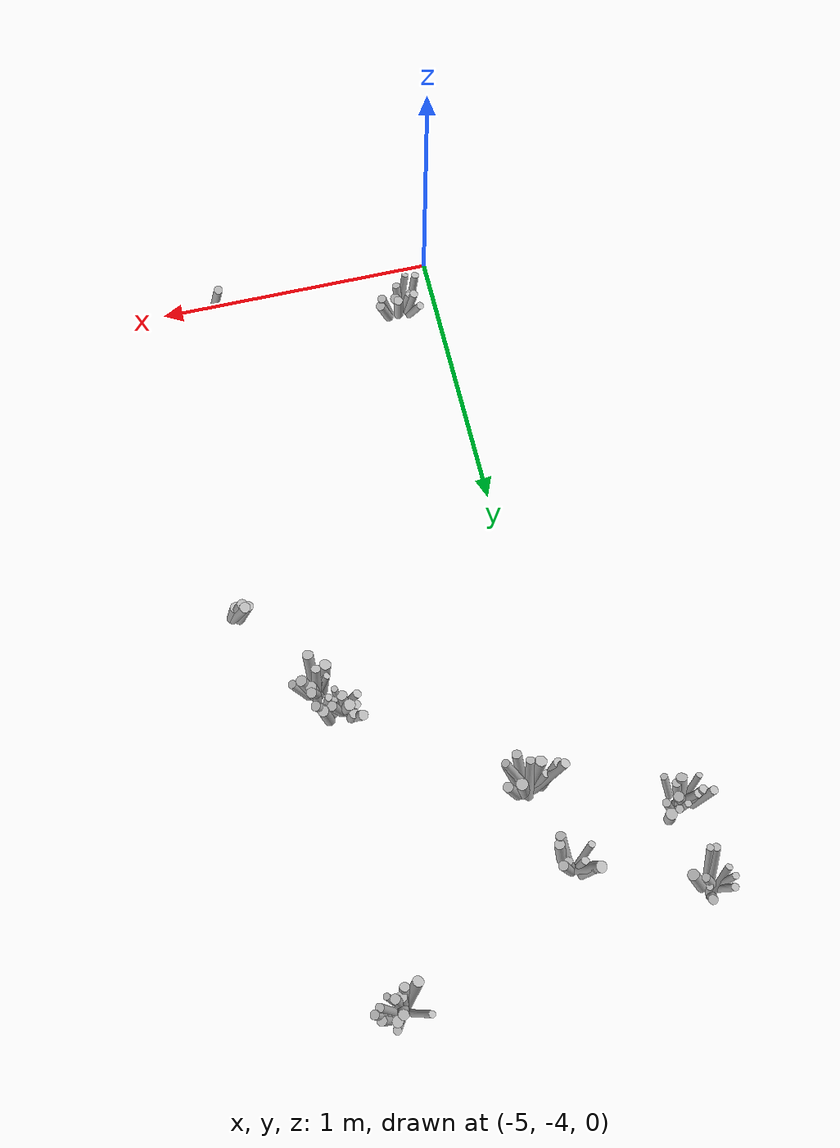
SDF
<sdf version="1.6">
 <world name="default">
  <model name="tussocks">
   <static>true</static>
   <link name="tuft10_0">
    <pose>-4.9243 -1.6290 0.0576 0 0.1812 6.1478</pose>
    <visual name="tuft10_0_v">
     <geometry><cylinder><radius>0.0147</radius><length>0.1251</length></cylinder></geometry>
     <material>
      <script>
       <uri>model://bushfire/materials/scripts</uri>
       <uri>model://bushfire/materials/textures</uri>
       <name>Bushfire/Tussock</name>
      </script>
     </material>
    </visual>
   </link>
   <link name="tuft10_1">
    <pose>-4.9185 -1.6919 0.0614 0 0.4004 5.0695</pose>
    <visual name="tuft10_1_v">
     <geometry><cylinder><radius>0.0172</radius><length>0.1335</length></cylinder></geometry>
     <material>
      <script>
       <uri>model://bushfire/materials/scripts</uri>
       <uri>model://bushfire/materials/textures</uri>
       <name>Bushfire/Foliage2</name>
      </script>
     </material>
    </visual>
   </link>
   <link name="tuft10_2">
    <pose>-4.9526 -1.6180 0.0778 0 0.1141 2.4204</pose>
    <visual name="tuft10_2_v">
     <geometry><cylinder><radius>0.0130</radius><length>0.1690</length></cylinder></geometry>
     <material>
      <script>
       <uri>model://bushfire/materials/scripts</uri>
       <uri>model://bushfire/materials/textures</uri>
       <name>Bushfire/Foliage2</name>
      </script>
     </material>
    </visual>
   </link>
   <link name="tuft10_3">
    <pose>-4.9639 -1.6380 0.0939 0 0.2848 3.6424</pose>
    <visual name="tuft10_3_v">
     <geometry><cylinder><radius>0.0119</radius><length>0.2042</length></cylinder></geometry>
     <material>
      <script>
       <uri>model://bushfire/materials/scripts</uri>
       <uri>model://bushfire/materials/textures</uri>
       <name>Bushfire/Tussock</name>
      </script>
     </material>
    </visual>
   </link>
   <link name="tuft10_4">
    <pose>-4.9737 -1.5908 0.0819 0 0.2033 2.2819</pose>
    <visual name="tuft10_4_v">
     <geometry><cylinder><radius>0.0140</radius><length>0.1781</length></cylinder></geometry>
     <material>
      <script>
       <uri>model://bushfire/materials/scripts</uri>
       <uri>model://bushfire/materials/textures</uri>
       <name>Bushfire/Foliage2</name>
      </script>
     </material>
    </visual>
   </link>
   <link name="tuft10_5">
    <pose>-4.9684 -1.6028 0.0968 0 0.4118 2.3938</pose>
    <visual name="tuft10_5_v">
     <geometry><cylinder><radius>0.0194</radius><length>0.2105</length></cylinder></geometry>
     <material>
      <script>
       <uri>model://bushfire/materials/scripts</uri>
       <uri>model://bushfire/materials/textures</uri>
       <name>Bushfire/Foliage2</name>
      </script>
     </material>
    </visual>
   </link>
   <link name="tuft10_6">
    <pose>-4.9110 -1.6183 0.0773 0 0.2859 0.2507</pose>
    <visual name="tuft10_6_v">
     <geometry><cylinder><radius>0.0167</radius><length>0.1681</length></cylinder></geometry>
     <material>
      <script>
       <uri>model://bushfire/materials/scripts</uri>
       <uri>model://bushfire/materials/textures</uri>
       <name>Bushfire/Tussock</name>
      </script>
     </material>
    </visual>
   </link>
   <link name="tuft10_7">
    <pose>-4.9054 -1.6797 0.0605 0 0.1783 5.3257</pose>
    <visual name="tuft10_7_v">
     <geometry><cylinder><radius>0.0173</radius><length>0.1316</length></cylinder></geometry>
     <material>
      <script>
       <uri>model://bushfire/materials/scripts</uri>
       <uri>model://bushfire/materials/textures</uri>
       <name>Bushfire/Foliage2</name>
      </script>
     </material>
    </visual>
   </link>
   <link name="tuft17_0">
    <pose>-4.2511 -2.4000 0.1036 0 0.1702 4.4030</pose>
    <visual name="tuft17_0_v">
     <geometry><cylinder><radius>0.0157</radius><length>0.2252</length></cylinder></geometry>
     <material>
      <script>
       <uri>model://bushfire/materials/scripts</uri>
       <uri>model://bushfire/materials/textures</uri>
       <name>Bushfire/Tussock</name>
      </script>
     </material>
    </visual>
   </link>
   <link name="tuft17_1">
    <pose>-4.2760 -2.3504 0.0637 0 0.1560 2.0581</pose>
    <visual name="tuft17_1_v">
     <geometry><cylinder><radius>0.0125</radius><length>0.1386</length></cylinder></geometry>
     <material>
      <script>
       <uri>model://bushfire/materials/scripts</uri>
       <uri>model://bushfire/materials/textures</uri>
       <name>Bushfire/Foliage2</name>
      </script>
     </material>
    </visual>
   </link>
   <link name="tuft17_2">
    <pose>-4.2589 -2.4032 0.0623 0 0.2382 3.6701</pose>
    <visual name="tuft17_2_v">
     <geometry><cylinder><radius>0.0144</radius><length>0.1354</length></cylinder></geometry>
     <material>
      <script>
       <uri>model://bushfire/materials/scripts</uri>
       <uri>model://bushfire/materials/textures</uri>
       <name>Bushfire/Foliage2</name>
      </script>
     </material>
    </visual>
   </link>
   <link name="tuft17_3">
    <pose>-4.2419 -2.3828 0.0813 0 0.3356 1.0616</pose>
    <visual name="tuft17_3_v">
     <geometry><cylinder><radius>0.0175</radius><length>0.1768</length></cylinder></geometry>
     <material>
      <script>
       <uri>model://bushfire/materials/scripts</uri>
       <uri>model://bushfire/materials/textures</uri>
       <name>Bushfire/Foliage2</name>
      </script>
     </material>
    </visual>
   </link>
   <link name="tuft17_4">
    <pose>-4.2798 -2.4276 0.0852 0 0.1908 3.9286</pose>
    <visual name="tuft17_4_v">
     <geometry><cylinder><radius>0.0198</radius><length>0.1853</length></cylinder></geometry>
     <material>
      <script>
       <uri>model://bushfire/materials/scripts</uri>
       <uri>model://bushfire/materials/textures</uri>
       <name>Bushfire/Foliage2</name>
      </script>
     </material>
    </visual>
   </link>
   <link name="tuft17_5">
    <pose>-4.2671 -2.4017 0.0783 0 0.2738 3.3387</pose>
    <visual name="tuft17_5_v">
     <geometry><cylinder><radius>0.0112</radius><length>0.1702</length></cylinder></geometry>
     <material>
      <script>
       <uri>model://bushfire/materials/scripts</uri>
       <uri>model://bushfire/materials/textures</uri>
       <name>Bushfire/Tussock</name>
      </script>
     </material>
    </visual>
   </link>
   <link name="tuft17_6">
    <pose>-4.2437 -2.3929 0.0733 0 0.2068 0.6767</pose>
    <visual name="tuft17_6_v">
     <geometry><cylinder><radius>0.0189</radius><length>0.1593</length></cylinder></geometry>
     <material>
      <script>
       <uri>model://bushfire/materials/scripts</uri>
       <uri>model://bushfire/materials/textures</uri>
       <name>Bushfire/Tussock</name>
      </script>
     </material>
    </visual>
   </link>
   <link name="tuft17_7">
    <pose>-4.2446 -2.4495 0.1019 0 0.2286 4.8303</pose>
    <visual name="tuft17_7_v">
     <geometry><cylinder><radius>0.0186</radius><length>0.2214</length></cylinder></geometry>
     <material>
      <script>
       <uri>model://bushfire/materials/scripts</uri>
       <uri>model://bushfire/materials/textures</uri>
       <name>Bushfire/Tussock</name>
      </script>
     </material>
    </visual>
   </link>
   <link name="tuft17_8">
    <pose>-4.1979 -2.4115 0.0596 0 0.4181 6.0386</pose>
    <visual name="tuft17_8_v">
     <geometry><cylinder><radius>0.0152</radius><length>0.1295</length></cylinder></geometry>
     <material>
      <script>
       <uri>model://bushfire/materials/scripts</uri>
       <uri>model://bushfire/materials/textures</uri>
       <name>Bushfire/Tussock</name>
      </script>
     </material>
    </visual>
   </link>
   <link name="tuft17_9">
    <pose>-4.2252 -2.4025 0.0808 0 0.2511 6.1226</pose>
    <visual name="tuft17_9_v">
     <geometry><cylinder><radius>0.0190</radius><length>0.1756</length></cylinder></geometry>
     <material>
      <script>
       <uri>model://bushfire/materials/scripts</uri>
       <uri>model://bushfire/materials/textures</uri>
       <name>Bushfire/Tussock</name>
      </script>
     </material>
    </visual>
   </link>
   <link name="tuft18_0">
    <pose>-4.9044 -3.8096 0.0669 0 0.1738 2.4918</pose>
    <visual name="tuft18_0_v">
     <geometry><cylinder><radius>0.0150</radius><length>0.1455</length></cylinder></geometry>
     <material>
      <script>
       <uri>model://bushfire/materials/scripts</uri>
       <uri>model://bushfire/materials/textures</uri>
       <name>Bushfire/Foliage2</name>
      </script>
     </material>
    </visual>
   </link>
   <link name="tuft18_1">
    <pose>-4.8623 -3.8351 0.0504 0 0.3895 0.8024</pose>
    <visual name="tuft18_1_v">
     <geometry><cylinder><radius>0.0181</radius><length>0.1097</length></cylinder></geometry>
     <material>
      <script>
       <uri>model://bushfire/materials/scripts</uri>
       <uri>model://bushfire/materials/textures</uri>
       <name>Bushfire/Tussock</name>
      </script>
     </material>
    </visual>
   </link>
   <link name="tuft18_2">
    <pose>-4.8883 -3.8738 0.0626 0 0.4198 4.1411</pose>
    <visual name="tuft18_2_v">
     <geometry><cylinder><radius>0.0126</radius><length>0.1362</length></cylinder></geometry>
     <material>
      <script>
       <uri>model://bushfire/materials/scripts</uri>
       <uri>model://bushfire/materials/textures</uri>
       <name>Bushfire/Foliage2</name>
      </script>
     </material>
    </visual>
   </link>
   <link name="tuft18_3">
    <pose>-4.8643 -3.8482 0.0574 0 0.2571 4.8766</pose>
    <visual name="tuft18_3_v">
     <geometry><cylinder><radius>0.0146</radius><length>0.1248</length></cylinder></geometry>
     <material>
      <script>
       <uri>model://bushfire/materials/scripts</uri>
       <uri>model://bushfire/materials/textures</uri>
       <name>Bushfire/Tussock</name>
      </script>
     </material>
    </visual>
   </link>
   <link name="tuft18_4">
    <pose>-4.9136 -3.7818 0.0573 0 0.4177 2.2667</pose>
    <visual name="tuft18_4_v">
     <geometry><cylinder><radius>0.0136</radius><length>0.1246</length></cylinder></geometry>
     <material>
      <script>
       <uri>model://bushfire/materials/scripts</uri>
       <uri>model://bushfire/materials/textures</uri>
       <name>Bushfire/Foliage2</name>
      </script>
     </material>
    </visual>
   </link>
   <link name="tuft18_5">
    <pose>-4.8036 -3.7971 0.0625 0 0.3326 0.5909</pose>
    <visual name="tuft18_5_v">
     <geometry><cylinder><radius>0.0167</radius><length>0.1360</length></cylinder></geometry>
     <material>
      <script>
       <uri>model://bushfire/materials/scripts</uri>
       <uri>model://bushfire/materials/textures</uri>
       <name>Bushfire/Tussock</name>
      </script>
     </material>
    </visual>
   </link>
   <link name="tuft18_6">
    <pose>-4.8964 -3.8291 0.0522 0 0.1208 2.8308</pose>
    <visual name="tuft18_6_v">
     <geometry><cylinder><radius>0.0129</radius><length>0.1134</length></cylinder></geometry>
     <material>
      <script>
       <uri>model://bushfire/materials/scripts</uri>
       <uri>model://bushfire/materials/textures</uri>
       <name>Bushfire/Tussock</name>
      </script>
     </material>
    </visual>
   </link>
   <link name="tuft18_7">
    <pose>-4.8565 -3.8031 0.0611 0 0.1565 1.3155</pose>
    <visual name="tuft18_7_v">
     <geometry><cylinder><radius>0.0167</radius><length>0.1328</length></cylinder></geometry>
     <material>
      <script>
       <uri>model://bushfire/materials/scripts</uri>
       <uri>model://bushfire/materials/textures</uri>
       <name>Bushfire/Tussock</name>
      </script>
     </material>
    </visual>
   </link>
   <link name="tuft18_8">
    <pose>-4.8878 -3.8214 0.0599 0 0.2074 2.4679</pose>
    <visual name="tuft18_8_v">
     <geometry><cylinder><radius>0.0118</radius><length>0.1303</length></cylinder></geometry>
     <material>
      <script>
       <uri>model://bushfire/materials/scripts</uri>
       <uri>model://bushfire/materials/textures</uri>
       <name>Bushfire/Tussock</name>
      </script>
     </material>
    </visual>
   </link>
   <link name="tuft18_9">
    <pose>-4.8108 -3.8146 0.0670 0 0.2343 0.4149</pose>
    <visual name="tuft18_9_v">
     <geometry><cylinder><radius>0.0160</radius><length>0.1457</length></cylinder></geometry>
     <material>
      <script>
       <uri>model://bushfire/materials/scripts</uri>
       <uri>model://bushfire/materials/textures</uri>
       <name>Bushfire/Tussock</name>
      </script>
     </material>
    </visual>
   </link>
   <link name="tuft18_10">
    <pose>-4.9241 -3.8621 0.0772 0 0.1258 3.5214</pose>
    <visual name="tuft18_10_v">
     <geometry><cylinder><radius>0.0135</radius><length>0.1679</length></cylinder></geometry>
     <material>
      <script>
       <uri>model://bushfire/materials/scripts</uri>
       <uri>model://bushfire/materials/textures</uri>
       <name>Bushfire/Tussock</name>
      </script>
     </material>
    </visual>
   </link>
   <link name="tuft37_0">
    <pose>-4.2792 -1.3257 0.0815 0 0.3734 5.8326</pose>
    <visual name="tuft37_0_v">
     <geometry><cylinder><radius>0.0115</radius><length>0.1772</length></cylinder></geometry>
     <material>
      <script>
       <uri>model://bushfire/materials/scripts</uri>
       <uri>model://bushfire/materials/textures</uri>
       <name>Bushfire/Foliage2</name>
      </script>
     </material>
    </visual>
   </link>
   <link name="tuft37_1">
    <pose>-4.3023 -1.3311 0.0760 0 0.3407 4.3804</pose>
    <visual name="tuft37_1_v">
     <geometry><cylinder><radius>0.0166</radius><length>0.1653</length></cylinder></geometry>
     <material>
      <script>
       <uri>model://bushfire/materials/scripts</uri>
       <uri>model://bushfire/materials/textures</uri>
       <name>Bushfire/Foliage2</name>
      </script>
     </material>
    </visual>
   </link>
   <link name="tuft37_2">
    <pose>-4.2950 -1.3045 0.0837 0 0.3599 1.3816</pose>
    <visual name="tuft37_2_v">
     <geometry><cylinder><radius>0.0170</radius><length>0.1819</length></cylinder></geometry>
     <material>
      <script>
       <uri>model://bushfire/materials/scripts</uri>
       <uri>model://bushfire/materials/textures</uri>
       <name>Bushfire/Foliage2</name>
      </script>
     </material>
    </visual>
   </link>
   <link name="tuft37_3">
    <pose>-4.2896 -1.3186 0.0905 0 0.1665 6.0742</pose>
    <visual name="tuft37_3_v">
     <geometry><cylinder><radius>0.0166</radius><length>0.1968</length></cylinder></geometry>
     <material>
      <script>
       <uri>model://bushfire/materials/scripts</uri>
       <uri>model://bushfire/materials/textures</uri>
       <name>Bushfire/Foliage2</name>
      </script>
     </material>
    </visual>
   </link>
   <link name="tuft37_4">
    <pose>-4.3454 -1.2785 0.0852 0 0.4111 2.4659</pose>
    <visual name="tuft37_4_v">
     <geometry><cylinder><radius>0.0116</radius><length>0.1853</length></cylinder></geometry>
     <material>
      <script>
       <uri>model://bushfire/materials/scripts</uri>
       <uri>model://bushfire/materials/textures</uri>
       <name>Bushfire/Tussock</name>
      </script>
     </material>
    </visual>
   </link>
   <link name="tuft37_5">
    <pose>-4.2971 -1.3192 0.0704 0 0.1501 4.8530</pose>
    <visual name="tuft37_5_v">
     <geometry><cylinder><radius>0.0182</radius><length>0.1531</length></cylinder></geometry>
     <material>
      <script>
       <uri>model://bushfire/materials/scripts</uri>
       <uri>model://bushfire/materials/textures</uri>
       <name>Bushfire/Tussock</name>
      </script>
     </material>
    </visual>
   </link>
   <link name="tuft37_6">
    <pose>-4.2745 -1.2750 0.0657 0 0.1992 1.0710</pose>
    <visual name="tuft37_6_v">
     <geometry><cylinder><radius>0.0180</radius><length>0.1429</length></cylinder></geometry>
     <material>
      <script>
       <uri>model://bushfire/materials/scripts</uri>
       <uri>model://bushfire/materials/textures</uri>
       <name>Bushfire/Tussock</name>
      </script>
     </material>
    </visual>
   </link>
   <link name="tuft37_7">
    <pose>-4.2311 -1.3015 0.0775 0 0.3533 0.2287</pose>
    <visual name="tuft37_7_v">
     <geometry><cylinder><radius>0.0153</radius><length>0.1685</length></cylinder></geometry>
     <material>
      <script>
       <uri>model://bushfire/materials/scripts</uri>
       <uri>model://bushfire/materials/textures</uri>
       <name>Bushfire/Tussock</name>
      </script>
     </material>
    </visual>
   </link>
   <link name="tuft37_8">
    <pose>-4.3292 -1.3403 0.0907 0 0.3270 3.7740</pose>
    <visual name="tuft37_8_v">
     <geometry><cylinder><radius>0.0186</radius><length>0.1972</length></cylinder></geometry>
     <material>
      <script>
       <uri>model://bushfire/materials/scripts</uri>
       <uri>model://bushfire/materials/textures</uri>
       <name>Bushfire/Tussock</name>
      </script>
     </material>
    </visual>
   </link>
   <link name="tuft37_9">
    <pose>-4.2715 -1.2608 0.0578 0 0.3784 1.1388</pose>
    <visual name="tuft37_9_v">
     <geometry><cylinder><radius>0.0139</radius><length>0.1256</length></cylinder></geometry>
     <material>
      <script>
       <uri>model://bushfire/materials/scripts</uri>
       <uri>model://bushfire/materials/textures</uri>
       <name>Bushfire/Tussock</name>
      </script>
     </material>
    </visual>
   </link>
   <link name="tuft37_10">
    <pose>-4.2449 -1.3139 0.0763 0 0.2800 0.0572</pose>
    <visual name="tuft37_10_v">
     <geometry><cylinder><radius>0.0148</radius><length>0.1658</length></cylinder></geometry>
     <material>
      <script>
       <uri>model://bushfire/materials/scripts</uri>
       <uri>model://bushfire/materials/textures</uri>
       <name>Bushfire/Tussock</name>
      </script>
     </material>
    </visual>
   </link>
   <link name="tuft37_11">
    <pose>-4.2372 -1.2872 0.0567 0 0.2953 0.4583</pose>
    <visual name="tuft37_11_v">
     <geometry><cylinder><radius>0.0170</radius><length>0.1232</length></cylinder></geometry>
     <material>
      <script>
       <uri>model://bushfire/materials/scripts</uri>
       <uri>model://bushfire/materials/textures</uri>
       <name>Bushfire/Foliage2</name>
      </script>
     </material>
    </visual>
   </link>
   <link name="tuft63_0">
    <pose>-4.3143 -2.3371 0.0524 0 0.2013 5.9512</pose>
    <visual name="tuft63_0_v">
     <geometry><cylinder><radius>0.0137</radius><length>0.1139</length></cylinder></geometry>
     <material>
      <script>
       <uri>model://bushfire/materials/scripts</uri>
       <uri>model://bushfire/materials/textures</uri>
       <name>Bushfire/Foliage2</name>
      </script>
     </material>
    </visual>
   </link>
   <link name="tuft63_1">
    <pose>-4.3476 -2.3317 0.0676 0 0.3996 3.1114</pose>
    <visual name="tuft63_1_v">
     <geometry><cylinder><radius>0.0146</radius><length>0.1469</length></cylinder></geometry>
     <material>
      <script>
       <uri>model://bushfire/materials/scripts</uri>
       <uri>model://bushfire/materials/textures</uri>
       <name>Bushfire/Tussock</name>
      </script>
     </material>
    </visual>
   </link>
   <link name="tuft63_2">
    <pose>-4.3668 -2.2805 0.0563 0 0.4035 2.2089</pose>
    <visual name="tuft63_2_v">
     <geometry><cylinder><radius>0.0171</radius><length>0.1223</length></cylinder></geometry>
     <material>
      <script>
       <uri>model://bushfire/materials/scripts</uri>
       <uri>model://bushfire/materials/textures</uri>
       <name>Bushfire/Tussock</name>
      </script>
     </material>
    </visual>
   </link>
   <link name="tuft63_3">
    <pose>-4.3283 -2.3324 0.0586 0 0.1491 5.0123</pose>
    <visual name="tuft63_3_v">
     <geometry><cylinder><radius>0.0179</radius><length>0.1273</length></cylinder></geometry>
     <material>
      <script>
       <uri>model://bushfire/materials/scripts</uri>
       <uri>model://bushfire/materials/textures</uri>
       <name>Bushfire/Foliage2</name>
      </script>
     </material>
    </visual>
   </link>
   <link name="tuft63_4">
    <pose>-4.3356 -2.3145 0.0691 0 0.2634 1.9579</pose>
    <visual name="tuft63_4_v">
     <geometry><cylinder><radius>0.0192</radius><length>0.1501</length></cylinder></geometry>
     <material>
      <script>
       <uri>model://bushfire/materials/scripts</uri>
       <uri>model://bushfire/materials/textures</uri>
       <name>Bushfire/Foliage2</name>
      </script>
     </material>
    </visual>
   </link>
   <link name="tuft63_5">
    <pose>-4.3502 -2.2906 0.0418 0 0.1949 2.0532</pose>
    <visual name="tuft63_5_v">
     <geometry><cylinder><radius>0.0170</radius><length>0.0908</length></cylinder></geometry>
     <material>
      <script>
       <uri>model://bushfire/materials/scripts</uri>
       <uri>model://bushfire/materials/textures</uri>
       <name>Bushfire/Tussock</name>
      </script>
     </material>
    </visual>
   </link>
   <link name="tuft63_6">
    <pose>-4.2636 -2.3021 0.0636 0 0.1538 0.4357</pose>
    <visual name="tuft63_6_v">
     <geometry><cylinder><radius>0.0188</radius><length>0.1382</length></cylinder></geometry>
     <material>
      <script>
       <uri>model://bushfire/materials/scripts</uri>
       <uri>model://bushfire/materials/textures</uri>
       <name>Bushfire/Tussock</name>
      </script>
     </material>
    </visual>
   </link>
   <link name="tuft63_7">
    <pose>-4.3159 -2.3370 0.0427 0 0.2012 5.9173</pose>
    <visual name="tuft63_7_v">
     <geometry><cylinder><radius>0.0156</radius><length>0.0929</length></cylinder></geometry>
     <material>
      <script>
       <uri>model://bushfire/materials/scripts</uri>
       <uri>model://bushfire/materials/textures</uri>
       <name>Bushfire/Tussock</name>
      </script>
     </material>
    </visual>
   </link>
   <link name="tuft63_8">
    <pose>-4.3127 -2.3515 0.0699 0 0.1600 5.3971</pose>
    <visual name="tuft63_8_v">
     <geometry><cylinder><radius>0.0116</radius><length>0.1519</length></cylinder></geometry>
     <material>
      <script>
       <uri>model://bushfire/materials/scripts</uri>
       <uri>model://bushfire/materials/textures</uri>
       <name>Bushfire/Foliage2</name>
      </script>
     </material>
    </visual>
   </link>
   <link name="tuft63_9">
    <pose>-4.3480 -2.3175 0.0571 0 0.4163 2.4967</pose>
    <visual name="tuft63_9_v">
     <geometry><cylinder><radius>0.0146</radius><length>0.1241</length></cylinder></geometry>
     <material>
      <script>
       <uri>model://bushfire/materials/scripts</uri>
       <uri>model://bushfire/materials/textures</uri>
       <name>Bushfire/Tussock</name>
      </script>
     </material>
    </visual>
   </link>
   <link name="tuft63_10">
    <pose>-4.2605 -2.3193 0.0748 0 0.3575 0.1883</pose>
    <visual name="tuft63_10_v">
     <geometry><cylinder><radius>0.0169</radius><length>0.1627</length></cylinder></geometry>
     <material>
      <script>
       <uri>model://bushfire/materials/scripts</uri>
       <uri>model://bushfire/materials/textures</uri>
       <name>Bushfire/Foliage2</name>
      </script>
     </material>
    </visual>
   </link>
   <link name="tuft63_11">
    <pose>-4.3021 -2.3190 0.0607 0 0.2731 0.4677</pose>
    <visual name="tuft63_11_v">
     <geometry><cylinder><radius>0.0168</radius><length>0.1319</length></cylinder></geometry>
     <material>
      <script>
       <uri>model://bushfire/materials/scripts</uri>
       <uri>model://bushfire/materials/textures</uri>
       <name>Bushfire/Foliage2</name>
      </script>
     </material>
    </visual>
   </link>
   <link name="tuft95_0">
    <pose>-5.3519 -1.7569 0.0675 0 0.3995 2.8310</pose>
    <visual name="tuft95_0_v">
     <geometry><cylinder><radius>0.0136</radius><length>0.1468</length></cylinder></geometry>
     <material>
      <script>
       <uri>model://bushfire/materials/scripts</uri>
       <uri>model://bushfire/materials/textures</uri>
       <name>Bushfire/Tussock</name>
      </script>
     </material>
    </visual>
   </link>
   <link name="tuft95_1">
    <pose>-5.3172 -1.7294 0.0632 0 0.2758 1.0087</pose>
    <visual name="tuft95_1_v">
     <geometry><cylinder><radius>0.0132</radius><length>0.1374</length></cylinder></geometry>
     <material>
      <script>
       <uri>model://bushfire/materials/scripts</uri>
       <uri>model://bushfire/materials/textures</uri>
       <name>Bushfire/Tussock</name>
      </script>
     </material>
    </visual>
   </link>
   <link name="tuft95_2">
    <pose>-5.4042 -1.7450 0.0818 0 0.2437 2.8982</pose>
    <visual name="tuft95_2_v">
     <geometry><cylinder><radius>0.0144</radius><length>0.1778</length></cylinder></geometry>
     <material>
      <script>
       <uri>model://bushfire/materials/scripts</uri>
       <uri>model://bushfire/materials/textures</uri>
       <name>Bushfire/Foliage2</name>
      </script>
     </material>
    </visual>
   </link>
   <link name="tuft95_3">
    <pose>-5.3030 -1.8134 0.0596 0 0.3445 5.2996</pose>
    <visual name="tuft95_3_v">
     <geometry><cylinder><radius>0.0122</radius><length>0.1295</length></cylinder></geometry>
     <material>
      <script>
       <uri>model://bushfire/materials/scripts</uri>
       <uri>model://bushfire/materials/textures</uri>
       <name>Bushfire/Foliage2</name>
      </script>
     </material>
    </visual>
   </link>
   <link name="tuft95_4">
    <pose>-5.3836 -1.7584 0.0688 0 0.2097 3.0736</pose>
    <visual name="tuft95_4_v">
     <geometry><cylinder><radius>0.0148</radius><length>0.1496</length></cylinder></geometry>
     <material>
      <script>
       <uri>model://bushfire/materials/scripts</uri>
       <uri>model://bushfire/materials/textures</uri>
       <name>Bushfire/Foliage2</name>
      </script>
     </material>
    </visual>
   </link>
   <link name="tuft95_5">
    <pose>-5.2864 -1.7131 0.0566 0 0.1498 0.7582</pose>
    <visual name="tuft95_5_v">
     <geometry><cylinder><radius>0.0190</radius><length>0.1231</length></cylinder></geometry>
     <material>
      <script>
       <uri>model://bushfire/materials/scripts</uri>
       <uri>model://bushfire/materials/textures</uri>
       <name>Bushfire/Tussock</name>
      </script>
     </material>
    </visual>
   </link>
   <link name="tuft95_6">
    <pose>-5.3292 -1.7778 0.0708 0 0.2723 5.1835</pose>
    <visual name="tuft95_6_v">
     <geometry><cylinder><radius>0.0159</radius><length>0.1539</length></cylinder></geometry>
     <material>
      <script>
       <uri>model://bushfire/materials/scripts</uri>
       <uri>model://bushfire/materials/textures</uri>
       <name>Bushfire/Tussock</name>
      </script>
     </material>
    </visual>
   </link>
   <link name="tuft95_7">
    <pose>-5.2858 -1.7423 0.0810 0 0.2719 0.3560</pose>
    <visual name="tuft95_7_v">
     <geometry><cylinder><radius>0.0136</radius><length>0.1761</length></cylinder></geometry>
     <material>
      <script>
       <uri>model://bushfire/materials/scripts</uri>
       <uri>model://bushfire/materials/textures</uri>
       <name>Bushfire/Tussock</name>
      </script>
     </material>
    </visual>
   </link>
   <link name="tuft95_8">
    <pose>-5.3909 -1.8013 0.0553 0 0.3383 3.7820</pose>
    <visual name="tuft95_8_v">
     <geometry><cylinder><radius>0.0110</radius><length>0.1201</length></cylinder></geometry>
     <material>
      <script>
       <uri>model://bushfire/materials/scripts</uri>
       <uri>model://bushfire/materials/textures</uri>
       <name>Bushfire/Tussock</name>
      </script>
     </material>
    </visual>
   </link>
   <link name="tuft95_9">
    <pose>-5.3393 -1.7345 0.0613 0 0.1365 1.6374</pose>
    <visual name="tuft95_9_v">
     <geometry><cylinder><radius>0.0115</radius><length>0.1332</length></cylinder></geometry>
     <material>
      <script>
       <uri>model://bushfire/materials/scripts</uri>
       <uri>model://bushfire/materials/textures</uri>
       <name>Bushfire/Tussock</name>
      </script>
     </material>
    </visual>
   </link>
   <link name="tuft95_10">
    <pose>-5.3381 -1.7779 0.0753 0 0.3851 4.6746</pose>
    <visual name="tuft95_10_v">
     <geometry><cylinder><radius>0.0187</radius><length>0.1637</length></cylinder></geometry>
     <material>
      <script>
       <uri>model://bushfire/materials/scripts</uri>
       <uri>model://bushfire/materials/textures</uri>
       <name>Bushfire/Tussock</name>
      </script>
     </material>
    </visual>
   </link>
   <link name="tuft95_11">
    <pose>-5.3364 -1.7613 0.0583 0 0.2945 0.2423</pose>
    <visual name="tuft95_11_v">
     <geometry><cylinder><radius>0.0172</radius><length>0.1266</length></cylinder></geometry>
     <material>
      <script>
       <uri>model://bushfire/materials/scripts</uri>
       <uri>model://bushfire/materials/textures</uri>
       <name>Bushfire/Foliage2</name>
      </script>
     </material>
    </visual>
   </link>
   <link name="tuft129_0">
    <pose>-4.0648 -2.7202 0.0838 0 0.2744 2.4905</pose>
    <visual name="tuft129_0_v">
     <geometry><cylinder><radius>0.0171</radius><length>0.1822</length></cylinder></geometry>
     <material>
      <script>
       <uri>model://bushfire/materials/scripts</uri>
       <uri>model://bushfire/materials/textures</uri>
       <name>Bushfire/Tussock</name>
      </script>
     </material>
    </visual>
   </link>
   <link name="tuft129_4">
    <pose>-4.0426 -2.7187 0.1155 0 0.2987 2.2236</pose>
    <visual name="tuft129_4_v">
     <geometry><cylinder><radius>0.0175</radius><length>0.2511</length></cylinder></geometry>
     <material>
      <script>
       <uri>model://bushfire/materials/scripts</uri>
       <uri>model://bushfire/materials/textures</uri>
       <name>Bushfire/Foliage2</name>
      </script>
     </material>
    </visual>
   </link>
   <link name="tuft129_6">
    <pose>-4.0315 -2.7324 0.0712 0 0.2108 2.2092</pose>
    <visual name="tuft129_6_v">
     <geometry><cylinder><radius>0.0192</radius><length>0.1548</length></cylinder></geometry>
     <material>
      <script>
       <uri>model://bushfire/materials/scripts</uri>
       <uri>model://bushfire/materials/textures</uri>
       <name>Bushfire/Foliage2</name>
      </script>
     </material>
    </visual>
   </link>
   <link name="tuft129_7">
    <pose>-4.0473 -2.7091 0.1172 0 0.3338 2.1914</pose>
    <visual name="tuft129_7_v">
     <geometry><cylinder><radius>0.0180</radius><length>0.2548</length></cylinder></geometry>
     <material>
      <script>
       <uri>model://bushfire/materials/scripts</uri>
       <uri>model://bushfire/materials/textures</uri>
       <name>Bushfire/Foliage2</name>
      </script>
     </material>
    </visual>
   </link>
   <link name="tuft129_10">
    <pose>-4.0491 -2.7291 0.0838 0 0.3005 2.4441</pose>
    <visual name="tuft129_10_v">
     <geometry><cylinder><radius>0.0167</radius><length>0.1823</length></cylinder></geometry>
     <material>
      <script>
       <uri>model://bushfire/materials/scripts</uri>
       <uri>model://bushfire/materials/textures</uri>
       <name>Bushfire/Foliage2</name>
      </script>
     </material>
    </visual>
   </link>
   <link name="tuft147_3">
    <pose>-4.2058 -3.9767 0.1001 0 0.3635 1.7978</pose>
    <visual name="tuft147_3_v">
     <geometry><cylinder><radius>0.0155</radius><length>0.2175</length></cylinder></geometry>
     <material>
      <script>
       <uri>model://bushfire/materials/scripts</uri>
       <uri>model://bushfire/materials/textures</uri>
       <name>Bushfire/Tussock</name>
      </script>
     </material>
    </visual>
   </link>
   <link name="tuft176_0">
    <pose>-5.3461 -1.4679 0.0823 0 0.3548 6.1273</pose>
    <visual name="tuft176_0_v">
     <geometry><cylinder><radius>0.0140</radius><length>0.1789</length></cylinder></geometry>
     <material>
      <script>
       <uri>model://bushfire/materials/scripts</uri>
       <uri>model://bushfire/materials/textures</uri>
       <name>Bushfire/Tussock</name>
      </script>
     </material>
    </visual>
   </link>
   <link name="tuft176_1">
    <pose>-5.3788 -1.4400 0.0994 0 0.2427 1.9042</pose>
    <visual name="tuft176_1_v">
     <geometry><cylinder><radius>0.0126</radius><length>0.2160</length></cylinder></geometry>
     <material>
      <script>
       <uri>model://bushfire/materials/scripts</uri>
       <uri>model://bushfire/materials/textures</uri>
       <name>Bushfire/Foliage2</name>
      </script>
     </material>
    </visual>
   </link>
   <link name="tuft176_2">
    <pose>-5.3682 -1.5255 0.1009 0 0.2308 4.7484</pose>
    <visual name="tuft176_2_v">
     <geometry><cylinder><radius>0.0142</radius><length>0.2194</length></cylinder></geometry>
     <material>
      <script>
       <uri>model://bushfire/materials/scripts</uri>
       <uri>model://bushfire/materials/textures</uri>
       <name>Bushfire/Foliage2</name>
      </script>
     </material>
    </visual>
   </link>
   <link name="tuft176_3">
    <pose>-5.3821 -1.4587 0.0982 0 0.1917 2.7093</pose>
    <visual name="tuft176_3_v">
     <geometry><cylinder><radius>0.0116</radius><length>0.2135</length></cylinder></geometry>
     <material>
      <script>
       <uri>model://bushfire/materials/scripts</uri>
       <uri>model://bushfire/materials/textures</uri>
       <name>Bushfire/Foliage2</name>
      </script>
     </material>
    </visual>
   </link>
   <link name="tuft176_4">
    <pose>-5.3715 -1.4651 0.0819 0 0.4183 3.8755</pose>
    <visual name="tuft176_4_v">
     <geometry><cylinder><radius>0.0123</radius><length>0.1781</length></cylinder></geometry>
     <material>
      <script>
       <uri>model://bushfire/materials/scripts</uri>
       <uri>model://bushfire/materials/textures</uri>
       <name>Bushfire/Foliage2</name>
      </script>
     </material>
    </visual>
   </link>
   <link name="tuft176_5">
    <pose>-5.3096 -1.4883 0.0646 0 0.3533 5.9051</pose>
    <visual name="tuft176_5_v">
     <geometry><cylinder><radius>0.0193</radius><length>0.1403</length></cylinder></geometry>
     <material>
      <script>
       <uri>model://bushfire/materials/scripts</uri>
       <uri>model://bushfire/materials/textures</uri>
       <name>Bushfire/Tussock</name>
      </script>
     </material>
    </visual>
   </link>
   <link name="tuft176_6">
    <pose>-5.3327 -1.4203 0.0924 0 0.3206 0.8600</pose>
    <visual name="tuft176_6_v">
     <geometry><cylinder><radius>0.0155</radius><length>0.2009</length></cylinder></geometry>
     <material>
      <script>
       <uri>model://bushfire/materials/scripts</uri>
       <uri>model://bushfire/materials/textures</uri>
       <name>Bushfire/Foliage2</name>
      </script>
     </material>
    </visual>
   </link>
   <link name="tuft176_7">
    <pose>-5.3384 -1.4537 0.0562 0 0.1441 0.3143</pose>
    <visual name="tuft176_7_v">
     <geometry><cylinder><radius>0.0115</radius><length>0.1223</length></cylinder></geometry>
     <material>
      <script>
       <uri>model://bushfire/materials/scripts</uri>
       <uri>model://bushfire/materials/textures</uri>
       <name>Bushfire/Foliage2</name>
      </script>
     </material>
    </visual>
   </link>
   <link name="tuft176_8">
    <pose>-5.3510 -1.5305 0.1063 0 0.1851 4.9964</pose>
    <visual name="tuft176_8_v">
     <geometry><cylinder><radius>0.0118</radius><length>0.2311</length></cylinder></geometry>
     <material>
      <script>
       <uri>model://bushfire/materials/scripts</uri>
       <uri>model://bushfire/materials/textures</uri>
       <name>Bushfire/Foliage2</name>
      </script>
     </material>
    </visual>
   </link>
   <link name="tuft182_0">
    <pose>-4.8394 -1.9080 0.0705 0 0.1462 0.4312</pose>
    <visual name="tuft182_0_v">
     <geometry><cylinder><radius>0.0200</radius><length>0.1533</length></cylinder></geometry>
     <material>
      <script>
       <uri>model://bushfire/materials/scripts</uri>
       <uri>model://bushfire/materials/textures</uri>
       <name>Bushfire/Tussock</name>
      </script>
     </material>
    </visual>
   </link>
   <link name="tuft182_1">
    <pose>-4.9317 -1.9266 0.1028 0 0.1905 3.2529</pose>
    <visual name="tuft182_1_v">
     <geometry><cylinder><radius>0.0168</radius><length>0.2235</length></cylinder></geometry>
     <material>
      <script>
       <uri>model://bushfire/materials/scripts</uri>
       <uri>model://bushfire/materials/textures</uri>
       <name>Bushfire/Tussock</name>
      </script>
     </material>
    </visual>
   </link>
   <link name="tuft182_2">
    <pose>-4.8255 -1.9363 0.1205 0 0.3763 5.8543</pose>
    <visual name="tuft182_2_v">
     <geometry><cylinder><radius>0.0138</radius><length>0.2620</length></cylinder></geometry>
     <material>
      <script>
       <uri>model://bushfire/materials/scripts</uri>
       <uri>model://bushfire/materials/textures</uri>
       <name>Bushfire/Foliage2</name>
      </script>
     </material>
    </visual>
   </link>
   <link name="tuft182_3">
    <pose>-4.8152 -1.9607 0.0687 0 0.3618 5.5706</pose>
    <visual name="tuft182_3_v">
     <geometry><cylinder><radius>0.0149</radius><length>0.1493</length></cylinder></geometry>
     <material>
      <script>
       <uri>model://bushfire/materials/scripts</uri>
       <uri>model://bushfire/materials/textures</uri>
       <name>Bushfire/Tussock</name>
      </script>
     </material>
    </visual>
   </link>
   <link name="tuft182_4">
    <pose>-4.9260 -1.9166 0.1173 0 0.3490 3.1040</pose>
    <visual name="tuft182_4_v">
     <geometry><cylinder><radius>0.0160</radius><length>0.2551</length></cylinder></geometry>
     <material>
      <script>
       <uri>model://bushfire/materials/scripts</uri>
       <uri>model://bushfire/materials/textures</uri>
       <name>Bushfire/Tussock</name>
      </script>
     </material>
    </visual>
   </link>
   <link name="tuft182_5">
    <pose>-4.8895 -1.9421 0.0884 0 0.2095 3.8676</pose>
    <visual name="tuft182_5_v">
     <geometry><cylinder><radius>0.0195</radius><length>0.1922</length></cylinder></geometry>
     <material>
      <script>
       <uri>model://bushfire/materials/scripts</uri>
       <uri>model://bushfire/materials/textures</uri>
       <name>Bushfire/Foliage2</name>
      </script>
     </material>
    </visual>
   </link>
   <link name="tuft182_6">
    <pose>-4.8419 -1.9640 0.0987 0 0.2653 5.1582</pose>
    <visual name="tuft182_6_v">
     <geometry><cylinder><radius>0.0166</radius><length>0.2145</length></cylinder></geometry>
     <material>
      <script>
       <uri>model://bushfire/materials/scripts</uri>
       <uri>model://bushfire/materials/textures</uri>
       <name>Bushfire/Foliage2</name>
      </script>
     </material>
    </visual>
   </link>
   <link name="tuft182_7">
    <pose>-4.8045 -1.9067 0.0757 0 0.2880 0.2057</pose>
    <visual name="tuft182_7_v">
     <geometry><cylinder><radius>0.0172</radius><length>0.1646</length></cylinder></geometry>
     <material>
      <script>
       <uri>model://bushfire/materials/scripts</uri>
       <uri>model://bushfire/materials/textures</uri>
       <name>Bushfire/Tussock</name>
      </script>
     </material>
    </visual>
   </link>
   <link name="tuft182_8">
    <pose>-4.8663 -1.9327 0.0856 0 0.4039 4.5048</pose>
    <visual name="tuft182_8_v">
     <geometry><cylinder><radius>0.0160</radius><length>0.1861</length></cylinder></geometry>
     <material>
      <script>
       <uri>model://bushfire/materials/scripts</uri>
       <uri>model://bushfire/materials/textures</uri>
       <name>Bushfire/Tussock</name>
      </script>
     </material>
    </visual>
   </link>
   <link name="tuft182_9">
    <pose>-4.9000 -1.9211 0.0683 0 0.2301 3.1979</pose>
    <visual name="tuft182_9_v">
     <geometry><cylinder><radius>0.0142</radius><length>0.1484</length></cylinder></geometry>
     <material>
      <script>
       <uri>model://bushfire/materials/scripts</uri>
       <uri>model://bushfire/materials/textures</uri>
       <name>Bushfire/Foliage2</name>
      </script>
     </material>
    </visual>
   </link>
  </model>
 </world>
</sdf>
